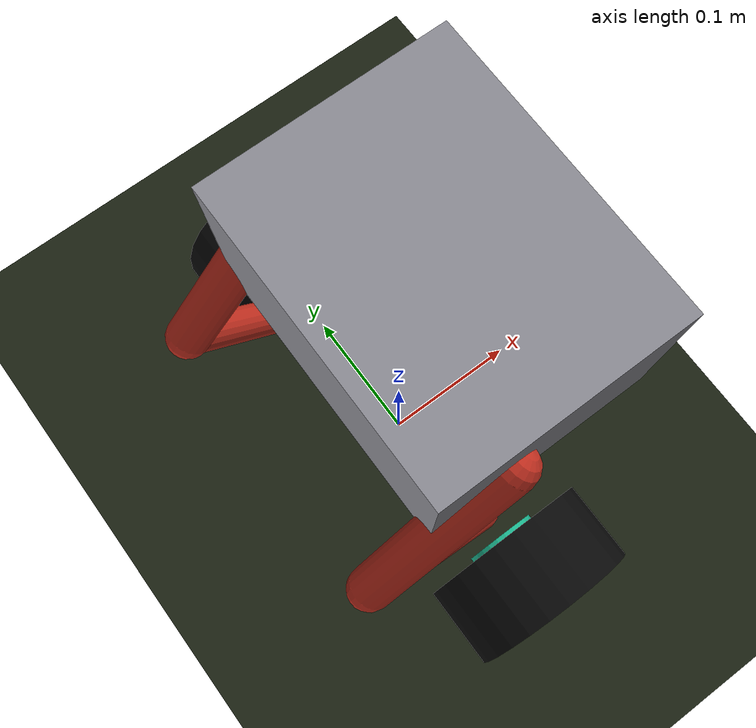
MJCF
<mujoco model="SeBaJu_BOT(II)">
  <!-- All angular values in this XML are radians. -->
  <compiler angle="radian" coordinate="local" inertiafromgeom="true"/>

  <option timestep="0.002" gravity="0 0 -9.81" integrator="implicitfast"/>

  <default>
    <joint damping="1.0" armature="0.005" limited="true"/>
    <geom contype="1" conaffinity="1" friction="1.8 0.03 0.003"/>
    <motor ctrllimited="true"/>
  </default>

  <asset>
    <texture name="grid" type="2d" builtin="checker" width="512" height="512" rgb1="0.25 0.25 0.25" rgb2="0.35 0.35 0.35"/>
    <material name="ground_mat" texture="grid" texrepeat="10 10" rgba="0.35 0.45 0.25 1"/>
    <material name="torso_mat" rgba="0.55 0.55 0.58 1"/>
    <material name="leg_mat" rgba="0.75 0.18 0.12 1"/>
    <material name="wheel_mat" rgba="0.03 0.03 0.03 1"/>
    <material name="hub_mat" rgba="0.10 0.70 0.55 1"/>
    <material name="imu_mat" rgba="1 0 0 1"/>
  </asset>

  <worldbody>
    <light directional="true" pos="0 -3 4" dir="0 0 -1" diffuse="0.85 0.85 0.85"/>
    <light directional="true" pos="0 0 1" dir="0.2 0 -1" diffuse="0.85 0.85 0.80" castshadow="true"/>
    <light directional="true" pos="0 0 1" dir="-0.2 0 -1" diffuse="0.40 0.40 0.35" castshadow="false"/>
    <camera name="side" pos="0 -1.7 0.35" xyaxes="1 0 0 0 0.25 0.97"/>
    <geom name="ground" type="plane" size="10 5 0.1" material="ground_mat" friction="1.2 0.05 0.005"/>

    <body name="torso" pos="0 0 0.2439">
      <freejoint name="root"/>

      <!-- Rectangular torso.  Center is shifted slightly forward to counter the backward leg mass. -->
      <geom name="torso_box" type="box" pos="0.025 0 0" size="0.075 0.095 0.055" material="torso_mat" mass="2.50"/>

      <!-- Small forward-low ballast to keep total CoM near wheel axle and low, without making robot too heavy. -->
      <geom name="front_low_balance_mass" type="box" pos="0.045 0 -0.045" size="0.035 0.070 0.018" rgba="0.20 0.20 0.22 1" mass="0.35"/>

      <!-- IMU at the designed torso center; controller should still use robot_com for true full-system CoM. -->
      <site name="imu" pos="0.0 0 0" size="0.012" material="imu_mat"/>

      <!-- Left side leg: attached to torso side, folded like the reference robot. -->
      <body name="left_thigh" pos="0 0.095 0">
        <joint name="left_hip" type="hinge" axis="0 1 0" range="-0.9 0.9" damping="0.8"/>
        <geom name="left_thigh_geom" type="capsule" fromto="0 0 0  -0.0919 0 -0.0919" size="0.014" material="leg_mat" mass="0.18"/>

        <body name="left_shank" pos="-0.0919 0 -0.0919">
          <joint name="left_knee" type="hinge" axis="0 1 0" range="-0.9 0.9" damping="0.8"/>
          <geom name="left_shank_geom" type="capsule" fromto="0 0 0  0.0919 0 -0.0919" size="0.012" material="leg_mat" mass="0.16"/>

          <body name="left_wheel" pos="0.0919 0.052 -0.0919">
            <joint name="left_wheel_joint" type="hinge" axis="0 1 0" limited="false" damping="0.02" armature="0.002"/>
            <geom name="left_wheel_geom" type="cylinder" size="0.06 0.028" quat="0.7071068 0.7071068 0 0" material="wheel_mat" mass="0.32" friction="2.2 0.04 0.004"/>
            <geom name="left_wheel_hub" type="cylinder" size="0.025 0.031" quat="0.7071068 0.7071068 0 0" material="hub_mat" mass="0.06" contype="0" conaffinity="0"/>
          </body>
        </body>
      </body>

      <!-- Right side leg: mirror of left side. -->
      <body name="right_thigh" pos="0 -0.095 0">
        <joint name="right_hip" type="hinge" axis="0 1 0" range="-0.9 0.9" damping="0.8"/>
        <geom name="right_thigh_geom" type="capsule" fromto="0 0 0  -0.0919 0 -0.0919" size="0.014" material="leg_mat" mass="0.18"/>

        <body name="right_shank" pos="-0.0919 0 -0.0919">
          <joint name="right_knee" type="hinge" axis="0 1 0" range="-0.9 0.9" damping="0.8"/>
          <geom name="right_shank_geom" type="capsule" fromto="0 0 0  0.0919 0 -0.0919" size="0.012" material="leg_mat" mass="0.16"/>

          <body name="right_wheel" pos="0.0919 -0.052 -0.0919">
            <joint name="right_wheel_joint" type="hinge" axis="0 1 0" limited="false" damping="0.02" armature="0.002"/>
            <geom name="right_wheel_geom" type="cylinder" size="0.06 0.028" quat="0.7071068 0.7071068 0 0" material="wheel_mat" mass="0.32" friction="2.2 0.04 0.004"/>
            <geom name="right_wheel_hub" type="cylinder" size="0.025 0.031" quat="0.7071068 0.7071068 0 0" material="hub_mat" mass="0.06" contype="0" conaffinity="0"/>
          </body>
        </body>
      </body>
    </body>
  </worldbody>

  <actuator>
    <!-- Hip/knee motors are for holding leg geometry; wheels are for balancing. -->
    <!-- Using the actuator/position (servo positioning) for pure position hold for the hip and knee joints -->

    <position name="left_hip_servo"  joint="left_hip"  kp="160" kv="12" ctrlrange="-0.6 0.6" forcerange="-60 60"/>
    <position name="right_hip_servo" joint="right_hip" kp="160" kv="12" ctrlrange="-0.6 0.6" forcerange="-60 60"/>
    <position name="left_knee_servo" joint="left_knee" kp="200" kv="14" ctrlrange="-0.8 0.8" forcerange="-60 60"/>
    <position name="right_knee_servo" joint="right_knee" kp="200" kv="14" ctrlrange="-0.8 0.8" forcerange="-60 60"/>

    <!-- Using actuator/motor (motor movement), alongside a python control command that locks/ensures motor maintains a position-->

    <motor name="left_wheel_motor" joint="left_wheel_joint" gear="18" ctrlrange="-1 1"/>
    <motor name="right_wheel_motor" joint="right_wheel_joint" gear="18" ctrlrange="-1 1"/>
  </actuator>

  <sensor>
    <framequat name="imu_quat" objtype="site" objname="imu"/>
    <gyro name="imu_gyro" site="imu"/>
    <accelerometer name="imu_accel" site="imu"/>
    <framepos name="imu_pos" objtype="site" objname="imu"/>
    <subtreecom name="robot_com" body="torso"/>
    <framepos name="left_wheel_pos" objtype="body" objname="left_wheel"/>
    <framepos name="right_wheel_pos" objtype="body" objname="right_wheel"/>
    <jointvel name="left_wheel_speed" joint="left_wheel_joint"/>
    <jointvel name="right_wheel_speed" joint="right_wheel_joint"/>
  </sensor>

</mujoco>
